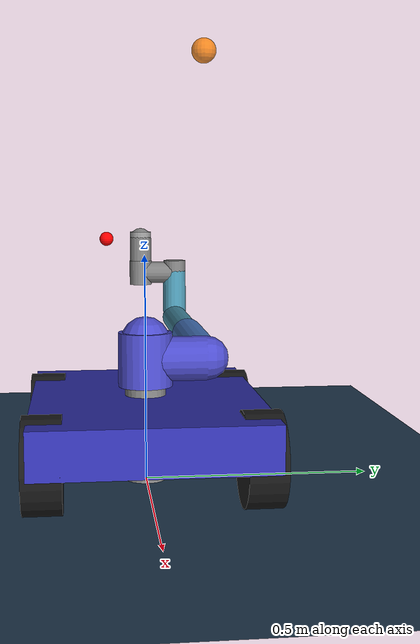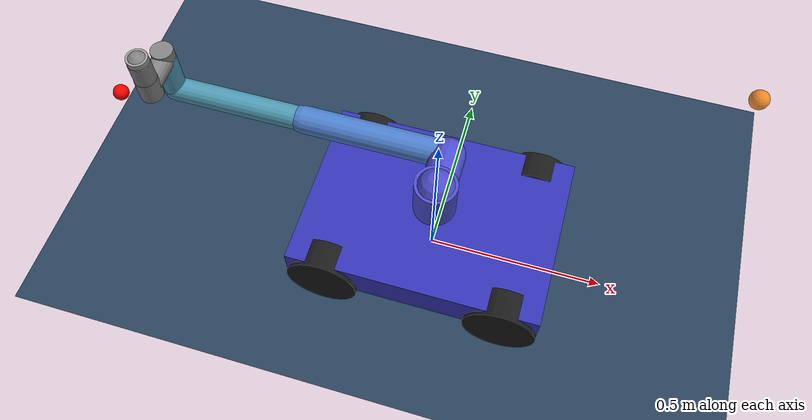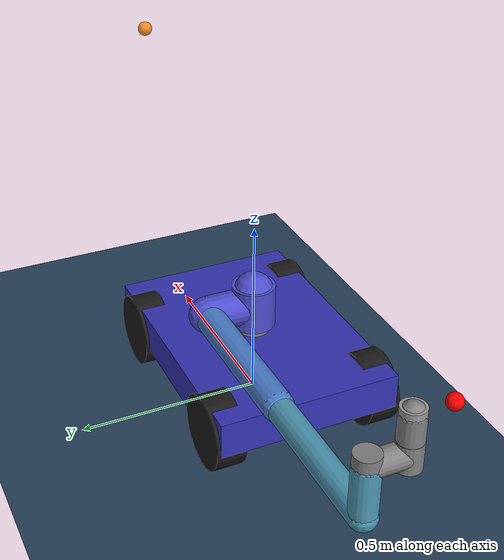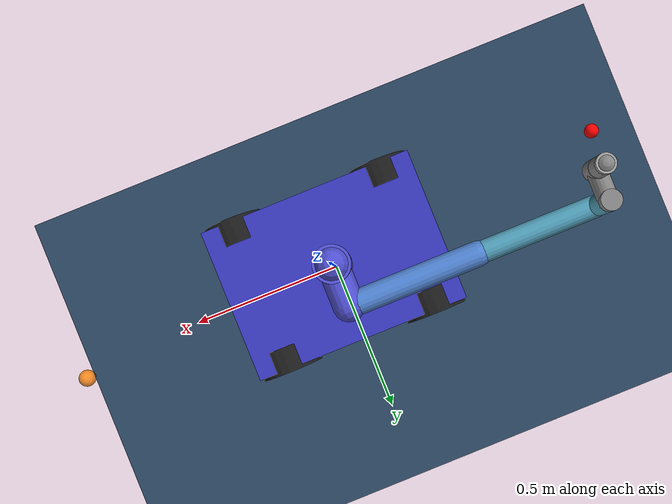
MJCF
<mujoco model="wheeled_ur5e">
  <compiler angle="radian" autolimits="true"/>

  <option timestep="0.002" integrator="implicitfast" gravity="0 0 -9.81"/>

  <!-- Rendering: soft headlight off, use explicit lights; shadows + nicer quality -->
  <visual>
    <headlight diffuse="0.6 0.6 0.6" ambient="0.3 0.3 0.3" specular="0 0 0"/>
    <rgba haze="0.15 0.25 0.35 1"/>
    <global azimuth="120" elevation="-20"/>
    <quality shadowsize="4096"/>
    <map force="0.1" zfar="30"/>
  </visual>

  <!-- Scene assets: gradient skybox + checkered ground plane -->
  <asset>
    <texture type="skybox" builtin="gradient" rgb1="0.3 0.5 0.7" rgb2="0 0 0"
             width="512" height="3072"/>
    <texture type="2d" name="groundplane" builtin="checker" mark="edge"
             rgb1="0.2 0.3 0.4" rgb2="0.1 0.2 0.3" markrgb="0.8 0.8 0.8"
             width="300" height="300"/>
    <material name="groundplane" texture="groundplane" texuniform="true"
              texrepeat="5 5" reflectance="0.2"/>
  </asset>

  <default>
    <joint limited="true"/>
    <geom contype="0" conaffinity="0" condim="1" solref="0.008 1"/>
    <position kp="400" kv="40" ctrllimited="true"/>
  </default>

  <worldbody>

    <!-- Scene lighting and ground -->
    <light pos="0 0 3.5" dir="0 0 -1" directional="true"
           diffuse="0.4 0.4 0.4" specular="0.1 0.1 0.1"/>
    <light pos="1.5 1.5 2.5" dir="-1 -1 -1.5" diffuse="0.5 0.5 0.5"/>
    <geom name="floor" type="plane" size="0 0 0.05" pos="0 0 0"
          material="groundplane"/>

    <!-- Target marker: mocap body for visualizing desired end-effector position -->
    <body name="target_body" mocap="true" pos="0.62 0.06 0.86">
      <site name="target_site" type="sphere" size="0.020" rgba="1 0.5 0 0.8"/>
    </body>

    <body name="base_x_body" pos="0 0 0">
      <inertial pos="0 0 0" mass="2.0" diaginertia="0.1 0.1 0.1"/>
      <joint name="base_x" type="slide" axis="1 0 0" range="-3.0 3.0" damping="10.0"/>

      <body name="base_y_body">
        <inertial pos="0 0 0" mass="2.0" diaginertia="0.1 0.1 0.1"/>
        <joint name="base_y" type="slide" axis="0 1 0" range="-3.0 3.0" damping="10.0"/>

        <body name="base_yaw_body">
          <inertial pos="0 0 0" mass="2.0" diaginertia="0.1 0.1 0.1"/>
          <joint name="base_yaw" type="hinge" axis="0 0 1" range="-3.1416 3.1416" damping="5.0"/>

          <body name="chassis" pos="0 0 0.14">
            <geom type="box" size="0.35 0.25 0.05" pos="0 0 0" rgba="0.2 0.2 0.7 1" mass="20.0"/>

            <!-- Four wheels (visual only, cylinders). Wheel bottom at world z=0. -->
            <geom type="cylinder" size="0.1 0.04" pos=" 0.25  0.22 -0.04"
                  euler="1.5708 0 0" rgba="0.1 0.1 0.1 1" mass="1.0"/>
            <geom type="cylinder" size="0.1 0.04" pos=" 0.25 -0.22 -0.04"
                  euler="1.5708 0 0" rgba="0.1 0.1 0.1 1" mass="1.0"/>
            <geom type="cylinder" size="0.1 0.04" pos="-0.25  0.22 -0.04"
                  euler="1.5708 0 0" rgba="0.1 0.1 0.1 1" mass="1.0"/>
            <geom type="cylinder" size="0.1 0.04" pos="-0.25 -0.22 -0.04"
                  euler="1.5708 0 0" rgba="0.1 0.1 0.1 1" mass="1.0"/>
          </body>

          <!-- Lift stage: translates in world z. Only the arm rides on it. -->
          <body name="base_z_body" pos="0 0 0">
            <inertial pos="0 0 0.1" mass="2.0" diaginertia="0.05 0.05 0.05"/>
            <joint name="base_z" type="slide" axis="0 0 1" range="0.0 0.5" damping="10.0"/>

            <geom type="cylinder" size="0.045 0.135" pos="0 0 0.135"
                  rgba="0.5 0.5 0.5 1" mass="2.0"/>

            <!-- UR5e arm: shoulder_link origin at pos 0 0 0.27 inside
                 ur5e_kinematics.xml, so the shoulder sits at world z = base_z + 0.27. -->
            <include file="ur5e/ur5e_kinematics.xml"/>
          </body>

        </body>
      </body>
    </body>

  </worldbody>

    <!-- Position actuators for all 10 DOFs -->
  <actuator>
    <!-- Horizontal base: gravity-free, moderate gains -->
    <position name="act_base_x"     joint="base_x"             kp="2000" kv="200"
              ctrlrange="-3.0 3.0"/>
    <position name="act_base_y"     joint="base_y"             kp="2000" kv="200"
              ctrlrange="-3.0 3.0"/>
    <!-- Vertical lift: high kp needed to resist ~55kg arm+chassis weight (sag ~1.5cm) -->
    <position name="act_base_z"     joint="base_z"             kp="35000" kv="800"
              ctrlrange="0.0 0.5"/>
    <position name="act_base_yaw"   joint="base_yaw"           kp="2000" kv="200"
              ctrlrange="-3.1416 3.1416"/>
    <!-- UR5e arm joints -->
    <position name="act_shoulder_pan"   joint="shoulder_pan_joint"   kp="3000" kv="200"
              ctrlrange="-6.2832 6.2832"/>
    <position name="act_shoulder_lift"  joint="shoulder_lift_joint"  kp="3000" kv="200"
              ctrlrange="-6.2832 6.2832"/>
    <position name="act_elbow"          joint="elbow_joint"          kp="2000" kv="150"
              ctrlrange="-3.1416 3.1416"/>
    <position name="act_wrist_1"        joint="wrist_1_joint"        kp="500" kv="50"
              ctrlrange="-6.2832 6.2832"/>
    <position name="act_wrist_2"        joint="wrist_2_joint"        kp="500" kv="50"
              ctrlrange="-6.2832 6.2832"/>
    <position name="act_wrist_3"        joint="wrist_3_joint"        kp="500" kv="50"
              ctrlrange="-6.2832 6.2832"/>
  </actuator>

</mujoco>

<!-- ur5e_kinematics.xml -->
<mujocoinclude>
  <!-- UR5e shoulder mounted at origin of base_yaw_body, offset by shoulder mount height -->
  <body name="shoulder_link" pos="0 0 0.27">
    <joint name="shoulder_pan_joint" type="hinge" axis="0 0 1"
           range="-6.2832 6.2832" damping="1.0" armature="0.1"/>
    <geom type="cylinder" size="0.06 0.06" rgba="0.3 0.3 0.8 1" mass="3.761"/>
    <geom type="capsule" fromto="0 0 0 0 0 0.04" size="0.055" rgba="0.3 0.3 0.8 1" mass="0"/>
    <!-- visual connector: shoulder origin to upper_arm origin (y offset 0.1358) -->
    <geom type="capsule" fromto="0 0 0 0 0.1358 0" size="0.05" rgba="0.3 0.3 0.8 1" mass="0"/>

    <body name="upper_arm_link" pos="0 0.1358 0">
      <!-- shoulder lift: rotate around y axis in local frame -->
      <joint name="shoulder_lift_joint" type="hinge" axis="0 1 0"
             range="-6.2832 6.2832" damping="1.0" armature="0.1"/>
      <geom type="capsule" fromto="0 0 0 -0.425 0 0" size="0.04" rgba="0.3 0.5 0.8 1" mass="8.058"/>

      <body name="forearm_link" pos="-0.425 0 0">
        <!-- elbow: rotate around y axis -->
        <joint name="elbow_joint" type="hinge" axis="0 1 0"
               range="-3.1416 3.1416" damping="0.5" armature="0.1"/>
        <geom type="capsule" fromto="0 0 0 -0.3922 0 0" size="0.035" rgba="0.3 0.6 0.7 1" mass="2.846"/>
        <!-- visual connector: forearm end up to wrist_1 origin (z offset 0.1333) -->
        <geom type="capsule" fromto="-0.3922 0 0 -0.3922 0 0.1333" size="0.033" rgba="0.3 0.6 0.7 1" mass="0"/>

        <body name="wrist_1_link" pos="-0.3922 0 0.1333">
          <!-- wrist 1: rotate around y axis -->
          <joint name="wrist_1_joint" type="hinge" axis="0 1 0"
                 range="-6.2832 6.2832" damping="0.1" armature="0.01"/>
          <geom type="cylinder" size="0.032 0.035" rgba="0.5 0.5 0.5 1" mass="1.37"/>
          <!-- visual connector: wrist_1 origin to wrist_2 origin (y offset -0.0997) -->
          <geom type="capsule" fromto="0 0 0 0 -0.0997 0" size="0.031" rgba="0.5 0.5 0.5 1" mass="0"/>

          <body name="wrist_2_link" pos="0 -0.0997 0">
            <!-- wrist 2: rotate around z axis -->
            <joint name="wrist_2_joint" type="hinge" axis="0 0 1"
                   range="-6.2832 6.2832" damping="0.1" armature="0.01"/>
            <geom type="cylinder" size="0.032 0.035" rgba="0.5 0.5 0.5 1" mass="1.37"/>
            <!-- visual connector: wrist_2 origin to wrist_3 origin (z offset 0.0996) -->
            <geom type="capsule" fromto="0 0 0 0 0 0.0996" size="0.031" rgba="0.5 0.5 0.5 1" mass="0"/>

            <body name="wrist_3_link" pos="0 0 0.0996">
              <!-- wrist 3: rotate around y axis -->
              <joint name="wrist_3_joint" type="hinge" axis="0 1 0"
                     range="-6.2832 6.2832" damping="0.1" armature="0.01"/>
              <geom type="cylinder" size="0.03 0.02" rgba="0.6 0.6 0.6 1" mass="0.195"/>
              <!-- ee_site: end-effector at flange (0.0996 m beyond wrist_3 center along z) -->
              <site name="ee_site" pos="0 -0.0996 0" size="0.020" rgba="1 0 0 1" type="sphere"/>
            </body>
          </body>
        </body>
      </body>
    </body>
  </body>
</mujocoinclude>
